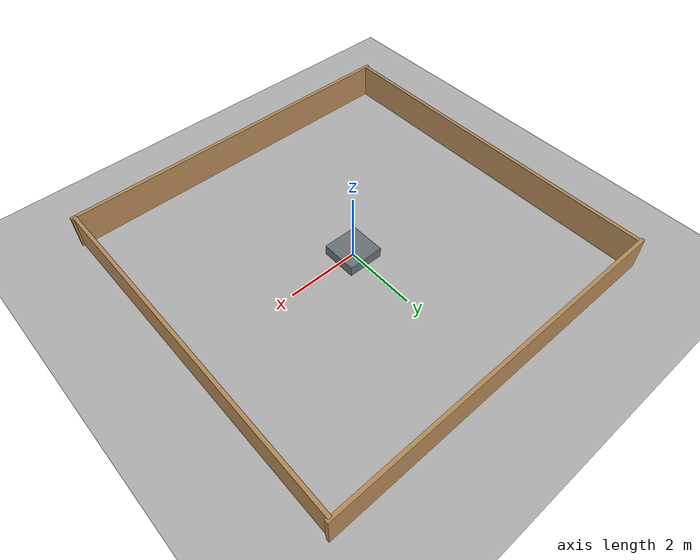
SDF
<?xml version="1.0"?>
<sdf version="1.6">
  <world name="extinguisher_room">
    <!-- Keep startup self-contained. model:// includes can block Gazebo while
         it searches the online model database before /spawn_entity exists. -->
    <light name="sun" type="directional">
      <cast_shadows>false</cast_shadows>
      <pose>0 0 10 0 0 0</pose>
      <diffuse>0.8 0.8 0.8 1</diffuse>
      <specular>0.2 0.2 0.2 1</specular>
      <attenuation>
        <range>1000</range>
        <constant>0.9</constant>
        <linear>0.01</linear>
        <quadratic>0.001</quadratic>
      </attenuation>
      <direction>-0.5 0.1 -0.9</direction>
    </light>
    <model name="ground_plane">
      <static>true</static>
      <link name="link">
        <collision name="collision">
          <geometry>
            <plane><normal>0 0 1</normal><size>100 100</size></plane>
          </geometry>
          <surface>
            <friction><ode><mu>100</mu><mu2>50</mu2></ode></friction>
          </surface>
        </collision>
        <visual name="visual">
          <cast_shadows>false</cast_shadows>
          <geometry>
            <plane><normal>0 0 1</normal><size>100 100</size></plane>
          </geometry>
          <material>
            <ambient>0.7 0.7 0.7 1</ambient>
            <diffuse>0.7 0.7 0.7 1</diffuse>
          </material>
        </visual>
      </link>
    </model>
    <physics type="ode">
      <max_step_size>0.001</max_step_size>
      <real_time_factor>1.0</real_time_factor>
      <real_time_update_rate>1000</real_time_update_rate>
    </physics>
    <scene>
      <ambient>0.75 0.75 0.75 1</ambient>
      <background>0.65 0.7 0.75 1</background>
      <shadows>false</shadows>
    </scene>
    <model name="room_walls">
      <static>true</static>
      <link name="walls">
        <collision name="north_collision"><pose>0 5 0.5 0 0 0</pose><geometry><box><size>10.2 0.1 1.0</size></box></geometry></collision>
        <collision name="south_collision"><pose>0 -5 0.5 0 0 0</pose><geometry><box><size>10.2 0.1 1.0</size></box></geometry></collision>
        <collision name="east_collision"><pose>5 0 0.5 0 0 0</pose><geometry><box><size>0.1 10.0 1.0</size></box></geometry></collision>
        <collision name="west_collision"><pose>-5 0 0.5 0 0 0</pose><geometry><box><size>0.1 10.0 1.0</size></box></geometry></collision>
        <visual name="north_visual"><pose>0 5 0.5 0 0 0</pose><geometry><box><size>10.2 0.1 1.0</size></box></geometry><material><ambient>0.72 0.55 0.35 1</ambient><diffuse>0.72 0.55 0.35 1</diffuse></material></visual>
        <visual name="south_visual"><pose>0 -5 0.5 0 0 0</pose><geometry><box><size>10.2 0.1 1.0</size></box></geometry><material><ambient>0.72 0.55 0.35 1</ambient><diffuse>0.72 0.55 0.35 1</diffuse></material></visual>
        <visual name="east_visual"><pose>5 0 0.5 0 0 0</pose><geometry><box><size>0.1 10.0 1.0</size></box></geometry><material><ambient>0.72 0.55 0.35 1</ambient><diffuse>0.72 0.55 0.35 1</diffuse></material></visual>
        <visual name="west_visual"><pose>-5 0 0.5 0 0 0</pose><geometry><box><size>0.1 10.0 1.0</size></box></geometry><material><ambient>0.72 0.55 0.35 1</ambient><diffuse>0.72 0.55 0.35 1</diffuse></material></visual>
      </link>
    </model>
    <model name="inspection_platform">
      <static>true</static>
      <link name="platform">
        <collision name="platform_collision">
          <pose>0 0 0.15 0 0 0</pose>
          <geometry><box><size>1.0 1.0 0.30</size></box></geometry>
        </collision>
        <visual name="platform_visual">
          <pose>0 0 0.15 0 0 0</pose>
          <geometry><box><size>1.0 1.0 0.30</size></box></geometry>
          <material>
            <ambient>0.28 0.30 0.32 1</ambient>
            <diffuse>0.42 0.45 0.48 1</diffuse>
          </material>
        </visual>
      </link>
    </model>
  </world>
</sdf>
